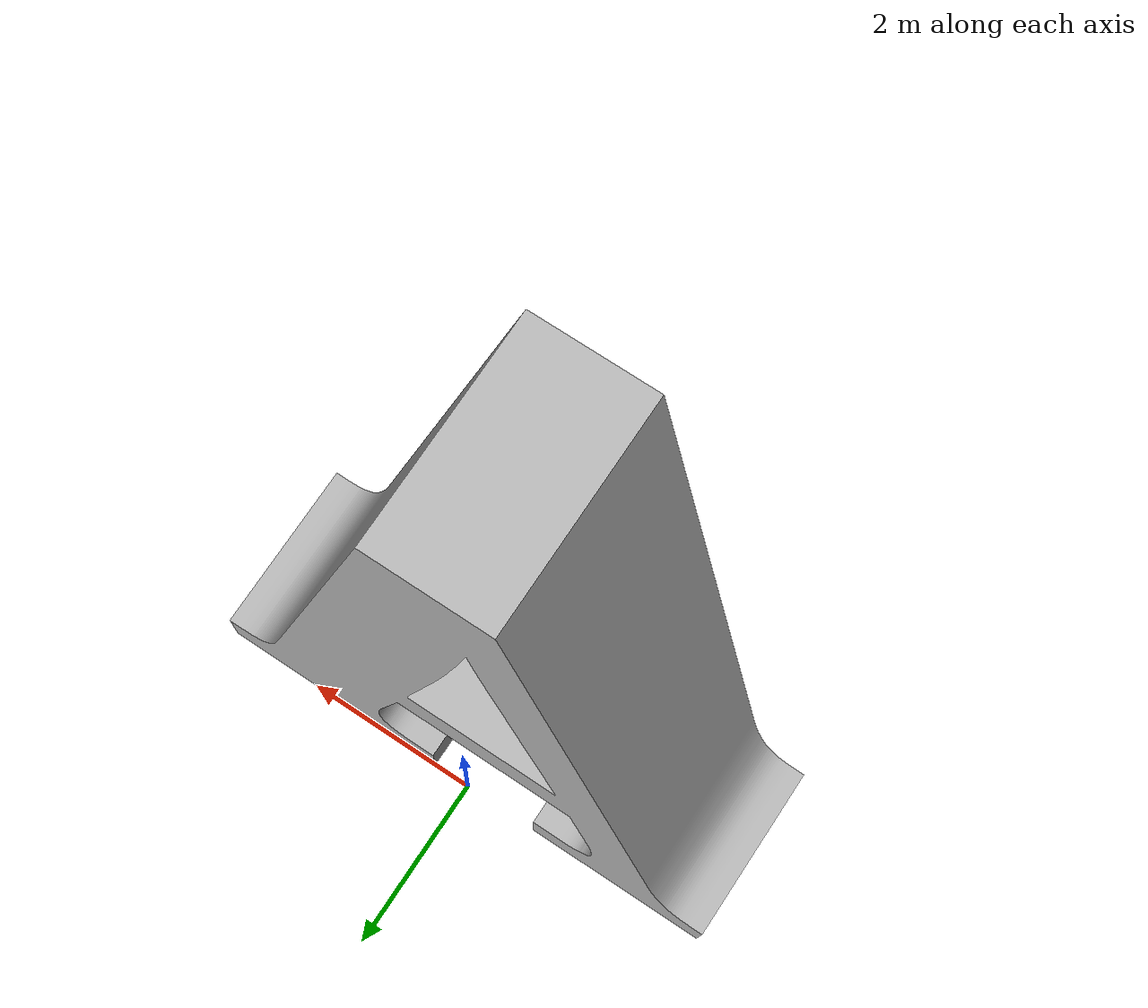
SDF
<sdf version='1.5'>
  <model name='text_A'>
    <link name='A'>
      <collision name='A_inertia_collision'>
        <pose frame=''>0 0 6.05 1.570796 -0 0</pose>
        <geometry>
          <mesh>
            <scale>0.2 0.2 0.2</scale>
            <uri>model://text_description/meshes/A.stl</uri>
          </mesh>
        </geometry>
      </collision>
      <visual name='A_inertia_visual'>
        <pose frame=''>0 0 6.05 1.570796 -0 0</pose>
        <geometry>
          <mesh>
            <scale>0.2 0.2 0.2</scale>
            <uri>model://text_description/meshes/A.stl</uri>
          </mesh>
        </geometry>
      </visual>
      <kinematic>1</kinematic>
      <velocity_decay/>
    </link>
  </model>
</sdf>
